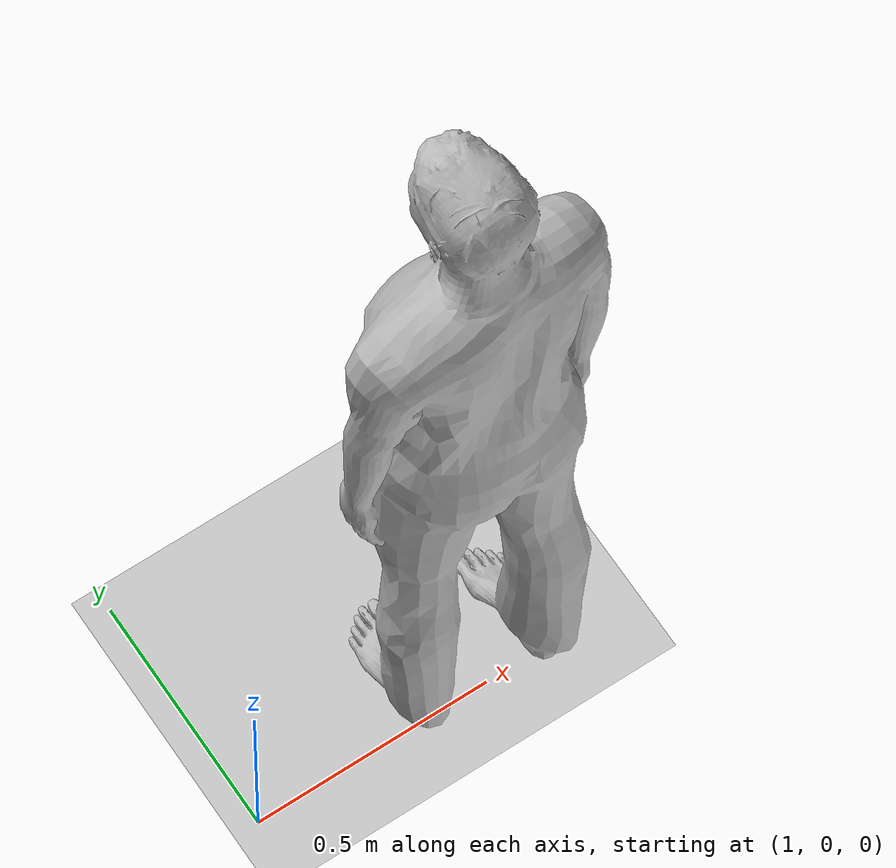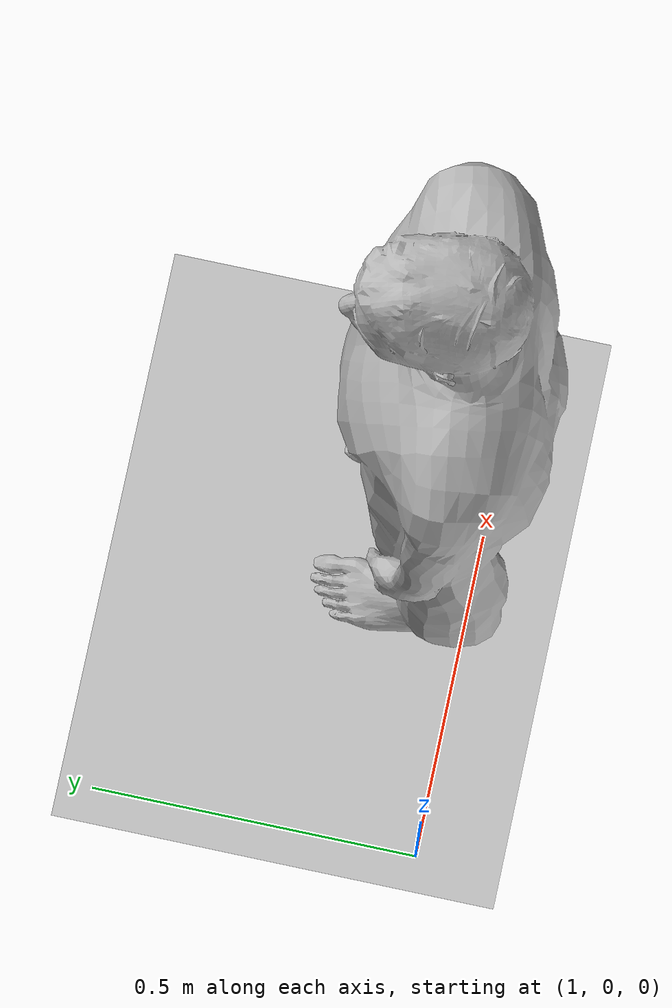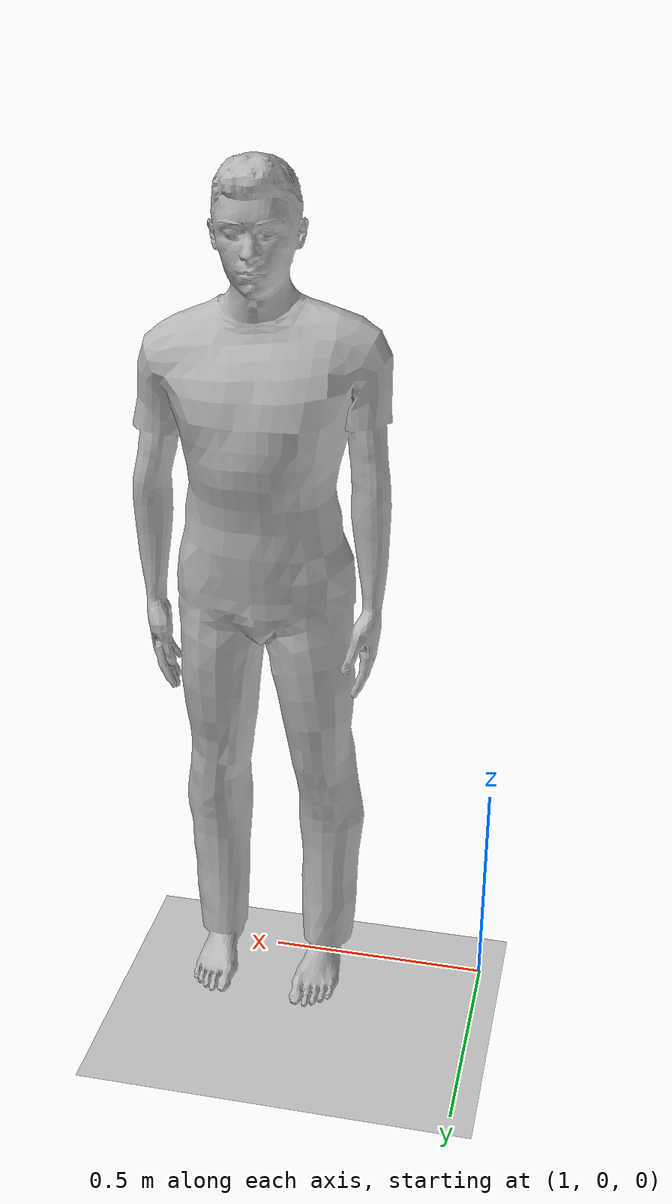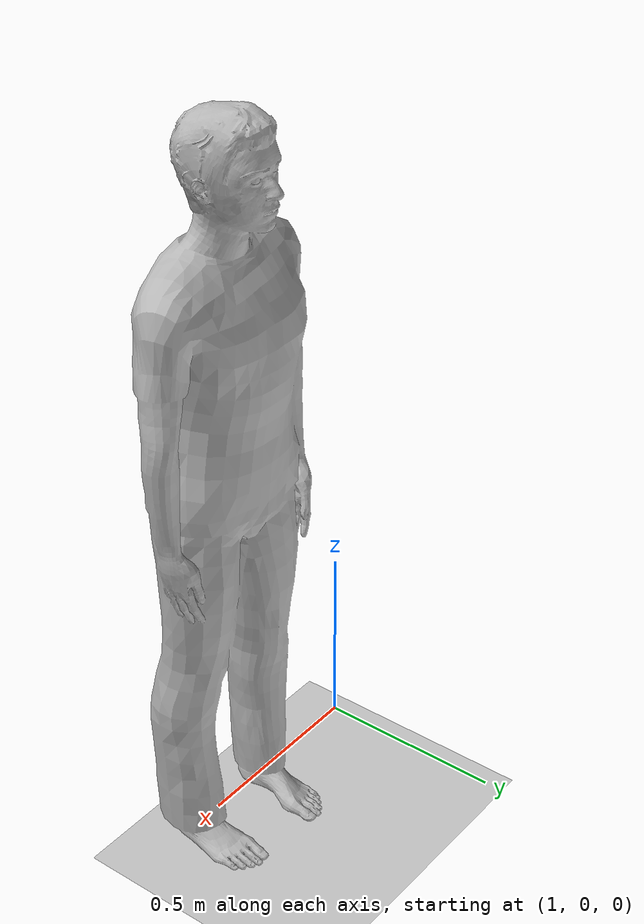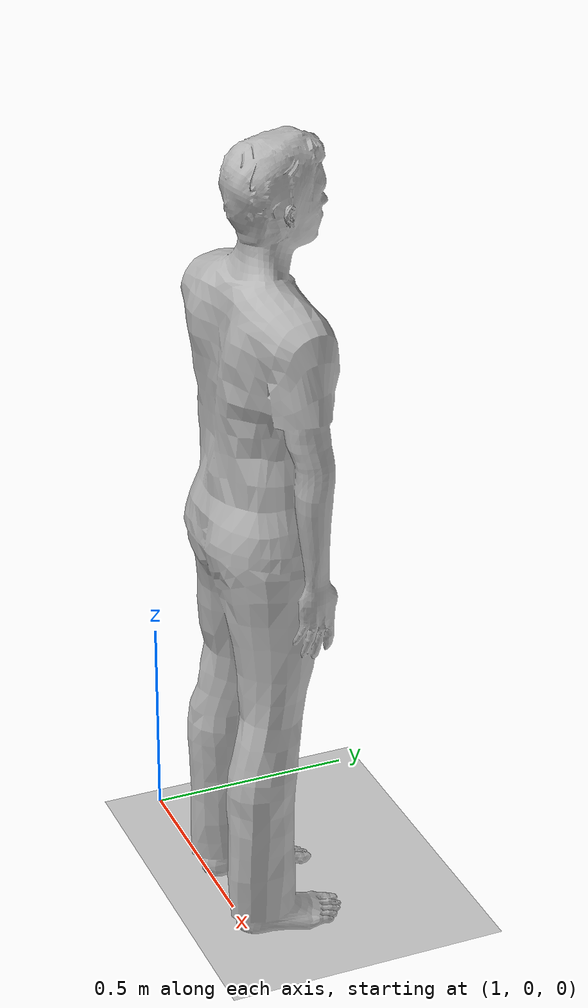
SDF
<sdf version="1.6">
 <world name="default">
  <model name="ground_plane">
   <static>1</static>
   <link name="link">
    <collision name="collision">
     <geometry><plane><normal>0 0 1</normal><size>100 100</size></plane></geometry>
     <surface><friction><ode><mu>100</mu><mu2>50</mu2></ode></friction></surface>
    </collision>
    <visual name="visual">
     <cast_shadows>0</cast_shadows>
     <geometry><plane><normal>0 0 1</normal><size>100 100</size></plane></geometry>
     <material>
      <script><uri>file://media/materials/scripts/gazebo.material</uri><name>Gazebo/Grey</name></script>
     </material>
    </visual>
   </link>
  </model>
  <light name="sun" type="directional">
   <pose>0 0 10 0 -0 0</pose>
   <diffuse>0.8 0.8 0.8 1</diffuse>
   <specular>0.2 0.2 0.2 1</specular>
   <attenuation>
    <range>1000</range>
    <constant>0.9</constant>
    <linear>0.01</linear>
    <quadratic>0.001</quadratic>
   </attenuation>
   <direction>-0.5 0.1 -0.9</direction>
  </light>
  <gravity>0 0 -9.8</gravity>
  <magnetic_field>6e-06 2.3e-05 -4.2e-05</magnetic_field>
  <atmosphere type="adiabatic"/>
  <physics name="default_physics" default="0" type="ode">
   <max_step_size>0.001</max_step_size>
   <real_time_factor>1</real_time_factor>
   <real_time_update_rate>1000</real_time_update_rate>
  </physics>
  <scene><ambient>0.4 0.4 0.4 1</ambient><background>0.7 0.7 0.7 1</background><shadows>1</shadows></scene>
  <spherical_coordinates>
   <surface_model>EARTH_WGS84</surface_model>
   <latitude_deg>0</latitude_deg>
   <longitude_deg>0</longitude_deg>
   <elevation>0</elevation>
   <heading_deg>0</heading_deg>
  </spherical_coordinates>
  <model name="person_standing">
   <link name="person">
    <inertial>
     <pose>0 -0.1 0.95 0 -0 1.5708</pose>
     <mass>80</mass>
     <inertia><ixx>24.88</ixx><ixy>0</ixy><ixz>0</ixz><iyy>25.73</iyy><iyz>0</iyz><izz>2.48</izz></inertia>
    </inertial>
    <collision name="bottom">
     <pose>0 -0.1 0.01 0 -0 1.5708</pose>
     <geometry><box><size>0.5 0.35 0.02</size></box></geometry>
    </collision>
    <collision name="person">
     <pose>0 0 0.02 0.04 -0 1.5708</pose>
     <geometry><mesh><uri>model://person_standing/meshes/standing.dae</uri></mesh></geometry>
    </collision>
    <visual name="visual">
     <pose>0 0 0.02 0.04 -0 1.5708</pose>
     <geometry><mesh><uri>model://person_standing/meshes/standing.dae</uri></mesh></geometry>
    </visual>
   </link>
   <static>true</static>
   <gravity>false</gravity>
   <pose>1.50243 -0.007413 0 1e-06 1e-06 1.57631</pose>
   <plugin name="obj_position_controller" filename="libgazebo_ros_set_obj_pos.so">
    <commandTopic>cmd_pos_person</commandTopic>
    <odometryTopic>ground_truth/person</odometryTopic>
    <odometryFrame>odom</odometryFrame>
    <odometryRate>20.0</odometryRate>
    <robotBaseFrame>person</robotBaseFrame>
    <initPose>0.0 0.0 0.0</initPose>
   </plugin>
  </model>
 </world>
</sdf>
